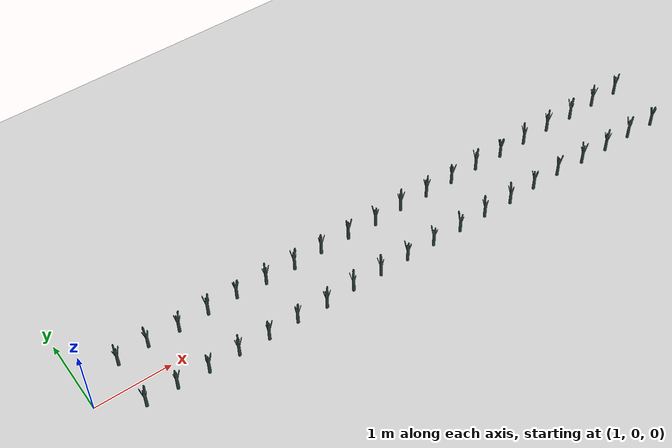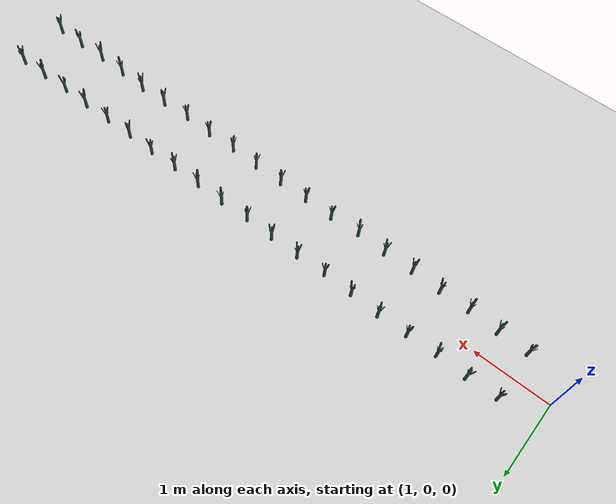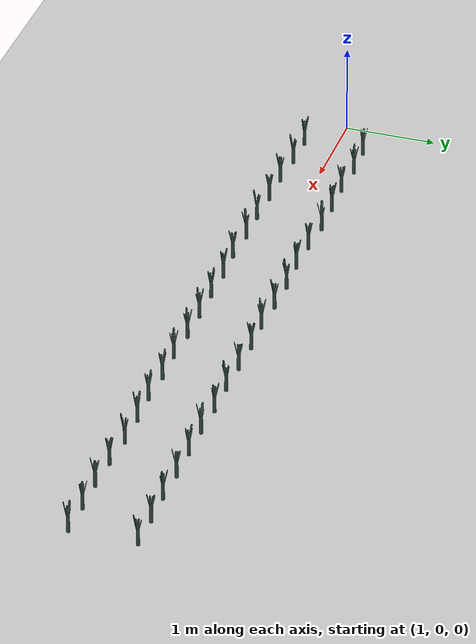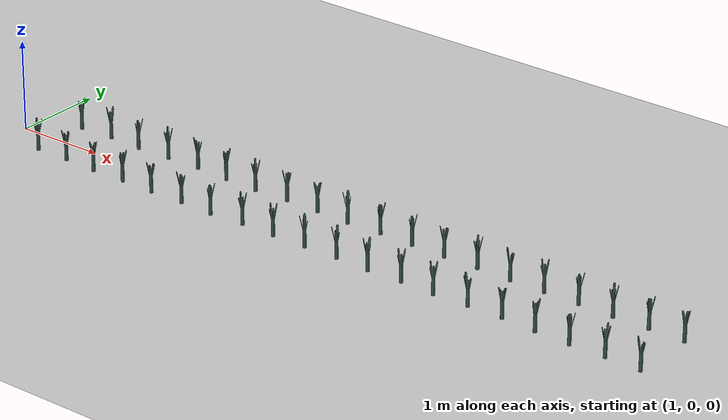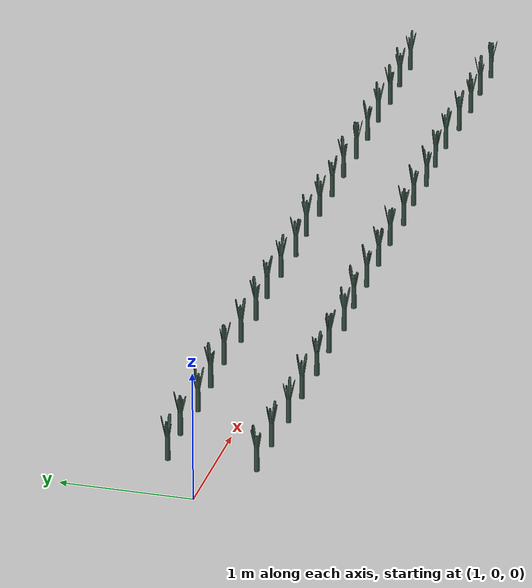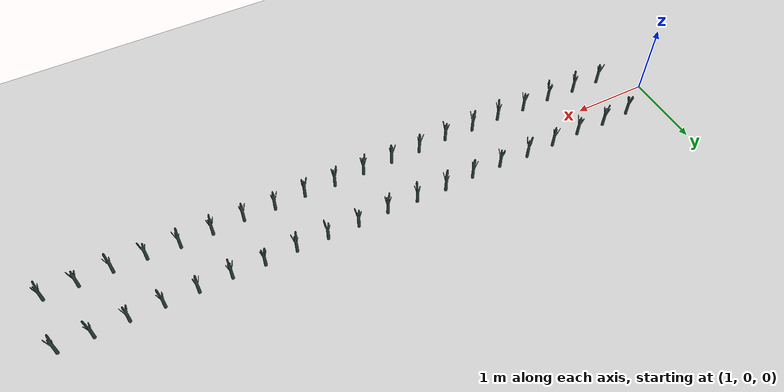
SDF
<sdf version="1.6">
 <world name="default">
  <light name="sun" type="directional">
   <pose>0 0 10 0 -0 0</pose>
   <diffuse>0.5 0.5 0.5 1</diffuse>
   <specular>0.1 0.1 0.1 1</specular>
   <attenuation>
    <range>1000</range>
    <constant>0.9</constant>
    <linear>0.01</linear>
    <quadratic>0.001</quadratic>
   </attenuation>
   <direction>0.9 0.5 -1</direction>
  </light>
  <scene><background>130 200 255 1</background><ambient>130 140 140 1</ambient></scene>
  <include><uri>model://dirt_plane</uri></include>
  <include>
   <uri>model://Leek</uri>
   <pose>1.500000 0.336723 0.15 0 0 -119.491995</pose>
   <static>0</static>
  </include>
  <include><uri>model://Leek</uri><pose>1.900000 0.357175 0.15 0 0 64.577103</pose><static>0</static></include>
  <include>
   <uri>model://Leek</uri>
   <pose>2.300000 0.338728 0.15 0 0 -101.446911</pose>
   <static>0</static>
  </include>
  <include><uri>model://Leek</uri><pose>2.700000 0.353566 0.15 0 0 32.098046</pose><static>0</static></include>
  <include><uri>model://Leek</uri><pose>3.100000 0.363645 0.15 0 0 122.806969</pose><static>0</static></include>
  <include><uri>model://Leek</uri><pose>3.500000 0.341578 0.15 0 0 -75.800033</pose><static>0</static></include>
  <include>
   <uri>model://Leek</uri>
   <pose>3.900000 0.332619 0.15 0 0 -156.428308</pose>
   <static>0</static>
  </include>
  <include><uri>model://Leek</uri><pose>4.300000 0.352547 0.15 0 0 22.919121</pose><static>0</static></include>
  <include><uri>model://Leek</uri><pose>4.700000 0.347716 0.15 0 0 -20.551726</pose><static>0</static></include>
  <include>
   <uri>model://Leek</uri>
   <pose>5.100000 0.332788 0.15 0 0 -154.905171</pose>
   <static>0</static>
  </include>
  <include><uri>model://Leek</uri><pose>5.500000 0.351311 0.15 0 0 11.800630</pose><static>0</static></include>
  <include><uri>model://Leek</uri><pose>5.900000 0.345700 0.15 0 0 -38.698545</pose><static>0</static></include>
  <include><uri>model://Leek</uri><pose>6.300000 0.342781 0.15 0 0 -64.975365</pose><static>0</static></include>
  <include><uri>model://Leek</uri><pose>6.700000 0.348664 0.15 0 0 -12.025687</pose><static>0</static></include>
  <include><uri>model://Leek</uri><pose>7.100000 0.339868 0.15 0 0 -91.185468</pose><static>0</static></include>
  <include><uri>model://Leek</uri><pose>7.500000 0.343146 0.15 0 0 -61.682350</pose><static>0</static></include>
  <include><uri>model://Leek</uri><pose>7.900000 0.349184 0.15 0 0 -7.348107</pose><static>0</static></include>
  <include><uri>model://Leek</uri><pose>8.300000 0.341673 0.15 0 0 -74.946573</pose><static>0</static></include>
  <include><uri>model://Leek</uri><pose>8.700000 0.355489 0.15 0 0 49.405224</pose><static>0</static></include>
  <include><uri>model://Leek</uri><pose>9.100000 0.355401 0.15 0 0 48.606349</pose><static>0</static></include>
  <include>
   <uri>model://Leek</uri>
   <pose>1.500000 -0.330352 0.15 0 0 176.827945</pose>
   <static>0</static>
  </include>
  <include>
   <uri>model://Leek</uri>
   <pose>1.900000 -0.332759 0.15 0 0 155.171452</pose>
   <static>0</static>
  </include>
  <include>
   <uri>model://Leek</uri>
   <pose>2.300000 -0.353666 0.15 0 0 -32.994181</pose>
   <static>0</static>
  </include>
  <include><uri>model://Leek</uri><pose>2.700000 -0.350056 0.15 0 0 -0.506068</pose><static>0</static></include>
  <include>
   <uri>model://Leek</uri>
   <pose>3.100000 -0.359990 0.15 0 0 -89.906822</pose>
   <static>0</static>
  </include>
  <include><uri>model://Leek</uri><pose>3.500000 -0.350980 0.15 0 0 -8.820266</pose><static>0</static></include>
  <include>
   <uri>model://Leek</uri>
   <pose>3.900000 -0.368942 0.15 0 0 -170.475109</pose>
   <static>0</static>
  </include>
  <include><uri>model://Leek</uri><pose>4.300000 -0.344306 0.15 0 0 51.242688</pose><static>0</static></include>
  <include><uri>model://Leek</uri><pose>4.700000 -0.347778 0.15 0 0 19.996898</pose><static>0</static></include>
  <include><uri>model://Leek</uri><pose>5.100000 -0.344168 0.15 0 0 52.489587</pose><static>0</static></include>
  <include><uri>model://Leek</uri><pose>5.500000 -0.340001 0.15 0 0 89.993603</pose><static>0</static></include>
  <include>
   <uri>model://Leek</uri>
   <pose>5.900000 -0.356089 0.15 0 0 -54.799552</pose>
   <static>0</static>
  </include>
  <include><uri>model://Leek</uri><pose>6.300000 -0.342186 0.15 0 0 70.325793</pose><static>0</static></include>
  <include>
   <uri>model://Leek</uri>
   <pose>6.700000 -0.356147 0.15 0 0 -55.325442</pose>
   <static>0</static>
  </include>
  <include>
   <uri>model://Leek</uri>
   <pose>7.100000 -0.338520 0.15 0 0 103.320318</pose>
   <static>0</static>
  </include>
  <include>
   <uri>model://Leek</uri>
   <pose>7.500000 -0.334145 0.15 0 0 142.692376</pose>
   <static>0</static>
  </include>
  <include>
   <uri>model://Leek</uri>
   <pose>7.900000 -0.357030 0.15 0 0 -63.265795</pose>
   <static>0</static>
  </include>
  <include>
   <uri>model://Leek</uri>
   <pose>8.300000 -0.366889 0.15 0 0 -152.002803</pose>
   <static>0</static>
  </include>
  <include>
   <uri>model://Leek</uri>
   <pose>8.700000 -0.359759 0.15 0 0 -87.828234</pose>
   <static>0</static>
  </include>
  <include>
   <uri>model://Leek</uri>
   <pose>9.100000 -0.367119 0.15 0 0 -154.070101</pose>
   <static>0</static>
  </include>
 </world>
</sdf>

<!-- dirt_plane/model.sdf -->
<sdf version="1.4">
<model name="dirt_plane">
  <static>true</static>
    <link name="link">
      <collision name="collision">
        <geometry>
          <plane>
            <normal>0 0 1</normal>
            <size>100 100</size>
          </plane>
        </geometry>
        <surface>
          <friction>
            <ode>
              <mu>0.99</mu>
              <mu2>0.99</mu2>
            </ode>
          </friction>
        </surface>
      </collision>
      <visual name="visual">
        <cast_shadows>false</cast_shadows>
        <geometry>
          <plane>
            <normal>0 0 1</normal>
            <size>100 100</size>
          </plane>
        </geometry>
        <material>
          <script>
            <uri>model://ground_plane/materials/scripts/my_ground_plane.material</uri>
            <uri>model://ground_plane/materials/textures</uri>
            <name>my_ground_plane/Dirt</name>
          </script>
        </material>
      </visual>
    </link>
  </model>
</sdf>

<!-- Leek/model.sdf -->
<sdf version='1.6'>
  <model name='Leek'>
    <link name='link'>
      <pose frame=''>0 0 0 0 -0 0</pose>
      <inertial>
        <mass>1</mass>
        <inertia>
          <ixx>0.145833</ixx>
          <ixy>0</ixy>
          <ixz>0</ixz>
          <iyy>0.145833</iyy>
          <iyz>0</iyz>
          <izz>0.125</izz>
        </inertia>
        <pose frame=''>0 0 0 0 -0 0</pose>
      </inertial>
      <self_collide>0</self_collide>
      <kinematic>0</kinematic>
      <gravity>1</gravity>
      <visual name='visual'>
        <geometry>
          <mesh>
            <uri>model://Leek/Poireau.dae</uri>
            <scale>1 1 1</scale>
          </mesh>
        </geometry>
        <material>
          <script>
            <name>Gazebo/Grey</name>
            <uri>file://media/materials/scripts/gazebo.material</uri>
          </script>
          <ambient>0.3 0.6 0.5 0</ambient>
          <diffuse>0.2 0.3 0.25 0</diffuse>
          <specular>0 0 0 1</specular>
          <emissive>0 0 0 1</emissive>
          <shader type='vertex'>
            <normal_map>__default__</normal_map>
          </shader>
        </material>
        <pose frame=''>0 0 -0.08 0 -0 0</pose>
        <cast_shadows>1</cast_shadows>
        <transparency>0</transparency>
      </visual>
      <collision name='collision'>
        <laser_retro>0</laser_retro>
        <max_contacts>10</max_contacts>
        <pose frame=''>0 0 0 0 -0 0</pose>
        <geometry>
          <cylinder>
            <radius>0.02</radius>
            <length>0.25</length>
          </cylinder>
        </geometry>
        <surface>
          <friction>
            <ode>
              <mu>1</mu>
              <mu2>1</mu2>
              <fdir1>0 0 0</fdir1>
              <slip1>0</slip1>
              <slip2>0</slip2>
            </ode>
            <torsional>
              <coefficient>1</coefficient>
              <patch_radius>0</patch_radius>
              <surface_radius>0</surface_radius>
              <use_patch_radius>1</use_patch_radius>
              <ode>
                <slip>0</slip>
              </ode>
            </torsional>
          </friction>
          <bounce>
            <restitution_coefficient>0</restitution_coefficient>
            <threshold>1e+06</threshold>
          </bounce>
          <contact>
            <collide_without_contact>0</collide_without_contact>
            <collide_without_contact_bitmask>1</collide_without_contact_bitmask>
            <collide_bitmask>1</collide_bitmask>
            <ode>
              <soft_cfm>0</soft_cfm>
              <soft_erp>0.2</soft_erp>
              <kp>1e+13</kp>
              <kd>1</kd>
              <max_vel>0.01</max_vel>
              <min_depth>0</min_depth>
            </ode>
            <bullet>
              <split_impulse>1</split_impulse>
              <split_impulse_penetration_threshold>-0.01</split_impulse_penetration_threshold>
              <soft_cfm>0</soft_cfm>
              <soft_erp>0.2</soft_erp>
              <kp>1e+13</kp>
              <kd>1</kd>
            </bullet>
          </contact>
        </surface>
      </collision>
    </link>
    <static>0</static>
    <allow_auto_disable>1</allow_auto_disable>
  </model>
</sdf>
